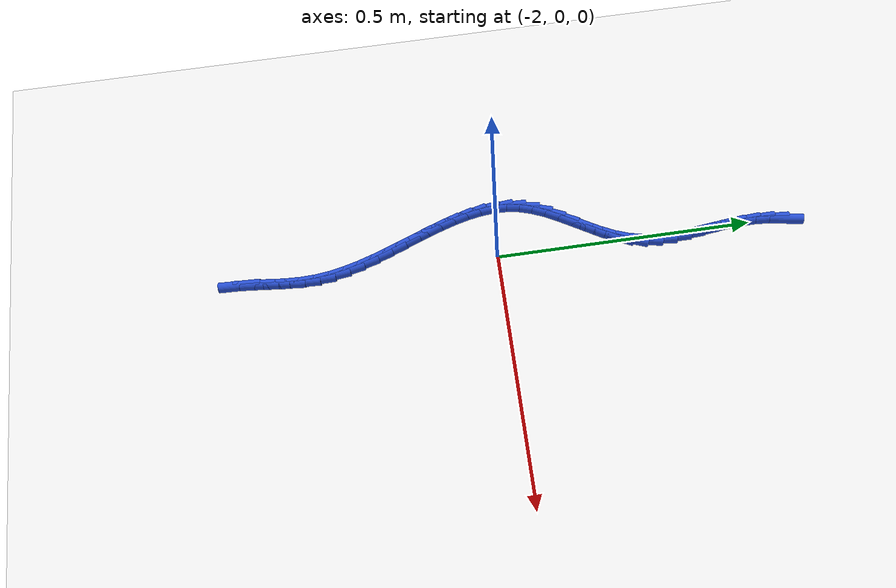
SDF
<sdf version="1.6">
 <world name="default">
  <model name="ground_plane">
   <static>1</static>
   <link name="link">
    <collision name="collision">
     <geometry><plane><normal>0 0 1</normal><size>100 100</size></plane></geometry>
     <surface><friction><ode><mu>100</mu><mu2>50</mu2></ode></friction></surface>
    </collision>
    <visual name="visual">
     <cast_shadows>0</cast_shadows>
     <geometry><plane><normal>0 0 1</normal><size>100 100</size></plane></geometry>
     <material>
      <script><uri>file://media/materials/scripts/gazebo.material</uri><name>Gazebo/WhiteGlow</name></script>
     </material>
    </visual>
   </link>
  </model>
  <model name="line">
   <link name="link_100">
    <pose>-1.99409339868117 0.5649897480696724 0.01 0 1.57 1.3979156998489404</pose>
    <collision name="collision">
     <geometry><cylinder><radius>0.01</radius><length>0.08</length></cylinder></geometry>
    </collision>
    <visual name="visual">
     <material>
      <script><name>Gazebo/Blue</name><uri>file://media/materials/scripts/gazebo.material</uri></script>
     </material>
     <geometry><cylinder><radius>0.01</radius><length>0.08</length></cylinder></geometry>
    </visual>
   </link>
   <link name="link_101">
    <pose>-1.9988839354130175 0.5375562791501692 0.01 0 1.57 1.504397867038779</pose>
    <collision name="collision">
     <geometry><cylinder><radius>0.01</radius><length>0.08</length></cylinder></geometry>
    </collision>
    <visual name="visual">
     <material>
      <script><name>Gazebo/Blue</name><uri>file://media/materials/scripts/gazebo.material</uri></script>
     </material>
     <geometry><cylinder><radius>0.01</radius><length>0.08</length></cylinder></geometry>
    </visual>
   </link>
   <link name="link_102">
    <pose>-2.0007379464836252 0.509674824533381 0.01 0 1.57 -1.5537678967196566</pose>
    <collision name="collision">
     <geometry><cylinder><radius>0.01</radius><length>0.08</length></cylinder></geometry>
    </collision>
    <visual name="visual">
     <material>
      <script><name>Gazebo/Blue</name><uri>file://media/materials/scripts/gazebo.material</uri></script>
     </material>
     <geometry><cylinder><radius>0.01</radius><length>0.08</length></cylinder></geometry>
    </visual>
   </link>
   <link name="link_103">
    <pose>-2.000257459874502 0.48146082216909364 0.01 0 1.57 -1.4968110829726127</pose>
    <collision name="collision">
     <geometry><cylinder><radius>0.01</radius><length>0.08</length></cylinder></geometry>
    </collision>
    <visual name="visual">
     <material>
      <script><name>Gazebo/Blue</name><uri>file://media/materials/scripts/gazebo.material</uri></script>
     </material>
     <geometry><cylinder><radius>0.01</radius><length>0.08</length></cylinder></geometry>
    </visual>
   </link>
   <link name="link_104">
    <pose>-1.9981501752706627 0.4530303118620421 0.01 0 1.57 -1.4651179189399914</pose>
    <collision name="collision">
     <geometry><cylinder><radius>0.01</radius><length>0.08</length></cylinder></geometry>
    </collision>
    <visual name="visual">
     <material>
      <script><name>Gazebo/Blue</name><uri>file://media/materials/scripts/gazebo.material</uri></script>
     </material>
     <geometry><cylinder><radius>0.01</radius><length>0.08</length></cylinder></geometry>
    </visual>
   </link>
   <link name="link_105">
    <pose>-1.9951237923571237 0.4244993334169622 0.01 0 1.57 -1.457735556239253</pose>
    <collision name="collision">
     <geometry><cylinder><radius>0.01</radius><length>0.08</length></cylinder></geometry>
    </collision>
    <visual name="visual">
     <material>
      <script><name>Gazebo/Blue</name><uri>file://media/materials/scripts/gazebo.material</uri></script>
     </material>
     <geometry><cylinder><radius>0.01</radius><length>0.08</length></cylinder></geometry>
    </visual>
   </link>
   <link name="link_106">
    <pose>-1.9918860108188998 0.3959839266385884 0.01 0 1.57 -1.4745088898477428</pose>
    <collision name="collision">
     <geometry><cylinder><radius>0.01</radius><length>0.08</length></cylinder></geometry>
    </collision>
    <visual name="visual">
     <material>
      <script><name>Gazebo/Blue</name><uri>file://media/materials/scripts/gazebo.material</uri></script>
     </material>
     <geometry><cylinder><radius>0.01</radius><length>0.08</length></cylinder></geometry>
    </visual>
   </link>
   <link name="link_107">
    <pose>-1.9891445303410071 0.3676001313316561 0.01 0 1.57 -1.5162063246088946</pose>
    <collision name="collision">
     <geometry><cylinder><radius>0.01</radius><length>0.08</length></cylinder></geometry>
    </collision>
    <visual name="visual">
     <material>
      <script><name>Gazebo/Blue</name><uri>file://media/materials/scripts/gazebo.material</uri></script>
     </material>
     <geometry><cylinder><radius>0.01</radius><length>0.08</length></cylinder></geometry>
    </visual>
   </link>
   <link name="link_108">
    <pose>-1.987607050608462 0.3394639873008998 0.01 0 1.57 1.5573226140925795</pose>
    <collision name="collision">
     <geometry><cylinder><radius>0.01</radius><length>0.08</length></cylinder></geometry>
    </collision>
    <visual name="visual">
     <material>
      <script><name>Gazebo/Blue</name><uri>file://media/materials/scripts/gazebo.material</uri></script>
     </material>
     <geometry><cylinder><radius>0.01</radius><length>0.08</length></cylinder></geometry>
    </visual>
   </link>
   <link name="link_109">
    <pose>-1.9879812713062792 0.31169153435105545 0.01 0 1.57 1.4615473715678684</pose>
    <collision name="collision">
     <geometry><cylinder><radius>0.01</radius><length>0.08</length></cylinder></geometry>
    </collision>
    <visual name="visual">
     <material>
      <script><name>Gazebo/Blue</name><uri>file://media/materials/scripts/gazebo.material</uri></script>
     </material>
     <geometry><cylinder><radius>0.01</radius><length>0.08</length></cylinder></geometry>
    </visual>
   </link>
   <link name="link_110">
    <pose>-1.990974892119475 0.28439881228685765 0.01 0 1.57 1.3384495718865532</pose>
    <collision name="collision">
     <geometry><cylinder><radius>0.01</radius><length>0.08</length></cylinder></geometry>
    </collision>
    <visual name="visual">
     <material>
      <script><name>Gazebo/Blue</name><uri>file://media/materials/scripts/gazebo.material</uri></script>
     </material>
     <geometry><cylinder><radius>0.01</radius><length>0.08</length></cylinder></geometry>
    </visual>
   </link>
   <link name="link_111">
    <pose>-1.997292050787566 0.2577013439700801 0.01 0 1.57 1.210121967337409</pose>
    <collision name="collision">
     <geometry><cylinder><radius>0.01</radius><length>0.08</length></cylinder></geometry>
    </collision>
    <visual name="visual">
     <material>
      <script><name>Gazebo/Blue</name><uri>file://media/materials/scripts/gazebo.material</uri></script>
     </material>
     <geometry><cylinder><radius>0.01</radius><length>0.08</length></cylinder></geometry>
    </visual>
   </link>
   <link name="link_112">
    <pose>-2.0071217271102215 0.2316398877072391 0.01 0 1.57 1.1161682340593102</pose>
    <collision name="collision">
     <geometry><cylinder><radius>0.01</radius><length>0.08</length></cylinder></geometry>
    </collision>
    <visual name="visual">
     <material>
      <script><name>Gazebo/Blue</name><uri>file://media/materials/scripts/gazebo.material</uri></script>
     </material>
     <geometry><cylinder><radius>0.01</radius><length>0.08</length></cylinder></geometry>
    </visual>
   </link>
   <link name="link_113">
    <pose>-2.019603584326097 0.2061029151371346 0.01 0 1.57 1.0583054257315547</pose>
    <collision name="collision">
     <geometry><cylinder><radius>0.01</radius><length>0.08</length></cylinder></geometry>
    </collision>
    <visual name="visual">
     <material>
      <script><name>Gazebo/Blue</name><uri>file://media/materials/scripts/gazebo.material</uri></script>
     </material>
     <geometry><cylinder><radius>0.01</radius><length>0.08</length></cylinder></geometry>
    </visual>
   </link>
   <link name="link_114">
    <pose>-2.033749623423887 0.18096037035467422 0.01 0 1.57 1.0334765235301189</pose>
    <collision name="collision">
     <geometry><cylinder><radius>0.01</radius><length>0.08</length></cylinder></geometry>
    </collision>
    <visual name="visual">
     <material>
      <script><name>Gazebo/Blue</name><uri>file://media/materials/scripts/gazebo.material</uri></script>
     </material>
     <geometry><cylinder><radius>0.01</radius><length>0.08</length></cylinder></geometry>
    </visual>
   </link>
   <link name="link_115">
    <pose>-2.0485718453922863 0.1560821974547654 0.01 0 1.57 1.0404185612540575</pose>
    <collision name="collision">
     <geometry><cylinder><radius>0.01</radius><length>0.08</length></cylinder></geometry>
    </collision>
    <visual name="visual">
     <material>
      <script><name>Gazebo/Blue</name><uri>file://media/materials/scripts/gazebo.material</uri></script>
     </material>
     <geometry><cylinder><radius>0.01</radius><length>0.08</length></cylinder></geometry>
    </visual>
   </link>
   <link name="link_116">
    <pose>-2.0630822512199884 0.13133834053231677 0.01 0 1.57 1.0803312485691863</pose>
    <collision name="collision">
     <geometry><cylinder><radius>0.01</radius><length>0.08</length></cylinder></geometry>
    </collision>
    <visual name="visual">
     <material>
      <script><name>Gazebo/Blue</name><uri>file://media/materials/scripts/gazebo.material</uri></script>
     </material>
     <geometry><cylinder><radius>0.01</radius><length>0.08</length></cylinder></geometry>
    </visual>
   </link>
   <link name="link_117">
    <pose>-2.0762928418956874 0.10659874368223587 0.01 0 1.57 1.1568959708487463</pose>
    <collision name="collision">
     <geometry><cylinder><radius>0.01</radius><length>0.08</length></cylinder></geometry>
    </collision>
    <visual name="visual">
     <material>
      <script><name>Gazebo/Blue</name><uri>file://media/materials/scripts/gazebo.material</uri></script>
     </material>
     <geometry><cylinder><radius>0.01</radius><length>0.08</length></cylinder></geometry>
    </visual>
   </link>
   <link name="link_118">
    <pose>-2.087215618408078 0.08173335099943056 0.01 0 1.57 1.2749835023264138</pose>
    <collision name="collision">
     <geometry><cylinder><radius>0.01</radius><length>0.08</length></cylinder></geometry>
    </collision>
    <visual name="visual">
     <material>
      <script><name>Gazebo/Blue</name><uri>file://media/materials/scripts/gazebo.material</uri></script>
     </material>
     <geometry><cylinder><radius>0.01</radius><length>0.08</length></cylinder></geometry>
    </visual>
   </link>
   <link name="link_119">
    <pose>-2.094871166147621 0.05661295944445857 0.01 0 1.57 1.4174488851874139</pose>
    <collision name="collision">
     <geometry><cylinder><radius>0.01</radius><length>0.08</length></cylinder></geometry>
    </collision>
    <visual name="visual">
     <material>
      <script><name>Gazebo/Blue</name><uri>file://media/materials/scripts/gazebo.material</uri></script>
     </material>
     <geometry><cylinder><radius>0.01</radius><length>0.08</length></cylinder></geometry>
    </visual>
   </link>
   <link name="link_120">
    <pose>-2.0988051157872 0.031160529552961024 0.01 0 1.57 1.5483954083392901</pose>
    <collision name="collision">
     <geometry><cylinder><radius>0.01</radius><length>0.08</length></cylinder></geometry>
    </collision>
    <visual name="visual">
     <material>
      <script><name>Gazebo/Blue</name><uri>file://media/materials/scripts/gazebo.material</uri></script>
     </material>
     <geometry><cylinder><radius>0.01</radius><length>0.08</length></cylinder></geometry>
    </visual>
   </link>
   <link name="link_121">
    <pose>-2.09938270984466 0.005380450806698918 0.01 0 1.57 -1.4812787891121912</pose>
    <collision name="collision">
     <geometry><cylinder><radius>0.01</radius><length>0.08</length></cylinder></geometry>
    </collision>
    <visual name="visual">
     <material>
      <script><name>Gazebo/Blue</name><uri>file://media/materials/scripts/gazebo.material</uri></script>
     </material>
     <geometry><cylinder><radius>0.01</radius><length>0.08</length></cylinder></geometry>
    </visual>
   </link>
   <link name="link_122">
    <pose>-2.0970403763662695 -0.020715814986081528 0.01 0 1.57 -1.3900024214564304</pose>
    <collision name="collision">
     <geometry><cylinder><radius>0.01</radius><length>0.08</length></cylinder></geometry>
    </collision>
    <visual name="visual">
     <material>
      <script><name>Gazebo/Blue</name><uri>file://media/materials/scripts/gazebo.material</uri></script>
     </material>
     <geometry><cylinder><radius>0.01</radius><length>0.08</length></cylinder></geometry>
    </visual>
   </link>
   <link name="link_123">
    <pose>-2.092214543398297 -0.047116806017134 0.01 0 1.57 -1.3188018198770897</pose>
    <collision name="collision">
     <geometry><cylinder><radius>0.01</radius><length>0.08</length></cylinder></geometry>
    </collision>
    <visual name="visual">
     <material>
      <script><name>Gazebo/Blue</name><uri>file://media/materials/scripts/gazebo.material</uri></script>
     </material>
     <geometry><cylinder><radius>0.01</radius><length>0.08</length></cylinder></geometry>
    </visual>
   </link>
   <link name="link_124">
    <pose>-2.085341638987012 -0.07381106047821226 0.01 0 1.57 -1.2661046630482884</pose>
    <collision name="collision">
     <geometry><cylinder><radius>0.01</radius><length>0.08</length></cylinder></geometry>
    </collision>
    <visual name="visual">
     <material>
      <script><name>Gazebo/Blue</name><uri>file://media/materials/scripts/gazebo.material</uri></script>
     </material>
     <geometry><cylinder><radius>0.01</radius><length>0.08</length></cylinder></geometry>
    </visual>
   </link>
   <link name="link_125">
    <pose>-2.076858091178682 -0.10078711656107073 0.01 0 1.57 -1.2301535871689342</pose>
    <collision name="collision">
     <geometry><cylinder><radius>0.01</radius><length>0.08</length></cylinder></geometry>
    </collision>
    <visual name="visual">
     <material>
      <script><name>Gazebo/Blue</name><uri>file://media/materials/scripts/gazebo.material</uri></script>
     </material>
     <geometry><cylinder><radius>0.01</radius><length>0.08</length></cylinder></geometry>
    </visual>
   </link>
   <link name="link_126">
    <pose>-2.0672003280195774 -0.12803351245746172 0.01 0 1.57 -1.209444023952832</pose>
    <collision name="collision">
     <geometry><cylinder><radius>0.01</radius><length>0.08</length></cylinder></geometry>
    </collision>
    <visual name="visual">
     <material>
      <script><name>Gazebo/Blue</name><uri>file://media/materials/scripts/gazebo.material</uri></script>
     </material>
     <geometry><cylinder><radius>0.01</radius><length>0.08</length></cylinder></geometry>
    </visual>
   </link>
   <link name="link_127">
    <pose>-2.0568047775559655 -0.1555387863591397 0.01 0 1.57 -1.2029070750526587</pose>
    <collision name="collision">
     <geometry><cylinder><radius>0.01</radius><length>0.08</length></cylinder></geometry>
    </collision>
    <visual name="visual">
     <material>
      <script><name>Gazebo/Blue</name><uri>file://media/materials/scripts/gazebo.material</uri></script>
     </material>
     <geometry><cylinder><radius>0.01</radius><length>0.08</length></cylinder></geometry>
    </visual>
   </link>
   <link name="link_128">
    <pose>-2.0461078678341145 -0.18329147645785834 0.01 0 1.57 -1.2099567822572574</pose>
    <collision name="collision">
     <geometry><cylinder><radius>0.01</radius><length>0.08</length></cylinder></geometry>
    </collision>
    <visual name="visual">
     <material>
      <script><name>Gazebo/Blue</name><uri>file://media/materials/scripts/gazebo.material</uri></script>
     </material>
     <geometry><cylinder><radius>0.01</radius><length>0.08</length></cylinder></geometry>
    </visual>
   </link>
   <link name="link_129">
    <pose>-2.0355460269002945 -0.21128012094537144 0.01 0 1.57 -1.2304713498301483</pose>
    <collision name="collision">
     <geometry><cylinder><radius>0.01</radius><length>0.08</length></cylinder></geometry>
    </collision>
    <visual name="visual">
     <material>
      <script><name>Gazebo/Blue</name><uri>file://media/materials/scripts/gazebo.material</uri></script>
     </material>
     <geometry><cylinder><radius>0.01</radius><length>0.08</length></cylinder></geometry>
    </visual>
   </link>
   <link name="link_130">
    <pose>-2.0255556828007726 -0.23949325801343269 0.01 0 1.57 -1.2647340216553027</pose>
    <collision name="collision">
     <geometry><cylinder><radius>0.01</radius><length>0.08</length></cylinder></geometry>
    </collision>
    <visual name="visual">
     <material>
      <script><name>Gazebo/Blue</name><uri>file://media/materials/scripts/gazebo.material</uri></script>
     </material>
     <geometry><cylinder><radius>0.01</radius><length>0.08</length></cylinder></geometry>
    </visual>
   </link>
   <link name="link_131">
    <pose>-2.0165732635818188 -0.2679194258537958 0.01 0 1.57 -1.3133271974369196</pose>
    <collision name="collision">
     <geometry><cylinder><radius>0.01</radius><length>0.08</length></cylinder></geometry>
    </collision>
    <visual name="visual">
     <material>
      <script><name>Gazebo/Blue</name><uri>file://media/materials/scripts/gazebo.material</uri></script>
     </material>
     <geometry><cylinder><radius>0.01</radius><length>0.08</length></cylinder></geometry>
    </visual>
   </link>
   <link name="link_132">
    <pose>-2.0090351972897005 -0.2965471626582153 0.01 0 1.57 -1.3769495317986191</pose>
    <collision name="collision">
     <geometry><cylinder><radius>0.01</radius><length>0.08</length></cylinder></geometry>
    </collision>
    <visual name="visual">
     <material>
      <script><name>Gazebo/Blue</name><uri>file://media/materials/scripts/gazebo.material</uri></script>
     </material>
     <geometry><cylinder><radius>0.01</radius><length>0.08</length></cylinder></geometry>
    </visual>
   </link>
   <link name="link_133">
    <pose>-2.003377911970688 -0.3253650066184434 0.01 0 1.57 -1.4561127813879962</pose>
    <collision name="collision">
     <geometry><cylinder><radius>0.01</radius><length>0.08</length></cylinder></geometry>
    </collision>
    <visual name="visual">
     <material>
      <script><name>Gazebo/Blue</name><uri>file://media/materials/scripts/gazebo.material</uri></script>
     </material>
     <geometry><cylinder><radius>0.01</radius><length>0.08</length></cylinder></geometry>
    </visual>
   </link>
   <link name="link_134">
    <pose>-2.0000378356710478 -0.3543614959262345 0.01 0 1.57 -1.545929331137811</pose>
    <collision name="collision">
     <geometry><cylinder><radius>0.01</radius><length>0.08</length></cylinder></geometry>
    </collision>
    <visual name="visual">
     <material>
      <script><name>Gazebo/Blue</name><uri>file://media/materials/scripts/gazebo.material</uri></script>
     </material>
     <geometry><cylinder><radius>0.01</radius><length>0.08</length></cylinder></geometry>
    </visual>
   </link>
   <link name="link_135">
    <pose>-1.999312893027992 -0.3835082903322336 0.01 0 1.57 1.5246035544220462</pose>
    <collision name="collision">
     <geometry><cylinder><radius>0.01</radius><length>0.08</length></cylinder></geometry>
    </collision>
    <visual name="visual">
     <material>
      <script><name>Gazebo/Blue</name><uri>file://media/materials/scripts/gazebo.material</uri></script>
     </material>
     <geometry><cylinder><radius>0.01</radius><length>0.08</length></cylinder></geometry>
    </visual>
   </link>
   <link name="link_136">
    <pose>-2.0006611294015073 -0.4126746993776888 0.01 0 1.57 1.4826441446247098</pose>
    <collision name="collision">
     <geometry><cylinder><radius>0.01</radius><length>0.08</length></cylinder></geometry>
    </collision>
    <visual name="visual">
     <material>
      <script><name>Gazebo/Blue</name><uri>file://media/materials/scripts/gazebo.material</uri></script>
     </material>
     <geometry><cylinder><radius>0.01</radius><length>0.08</length></cylinder></geometry>
    </visual>
   </link>
   <link name="link_137">
    <pose>-2.003225683881864 -0.44169165718071357 0.01 0 1.57 1.469278206354179</pose>
    <collision name="collision">
     <geometry><cylinder><radius>0.01</radius><length>0.08</length></cylinder></geometry>
    </collision>
    <visual name="visual">
     <material>
      <script><name>Gazebo/Blue</name><uri>file://media/materials/scripts/gazebo.material</uri></script>
     </material>
     <geometry><cylinder><radius>0.01</radius><length>0.08</length></cylinder></geometry>
    </visual>
   </link>
   <link name="link_138">
    <pose>-2.0061491386282397 -0.4703900299901266 0.01 0 1.57 1.4850488983331869</pose>
    <collision name="collision">
     <geometry><cylinder><radius>0.01</radius><length>0.08</length></cylinder></geometry>
    </collision>
    <visual name="visual">
     <material>
      <script><name>Gazebo/Blue</name><uri>file://media/materials/scripts/gazebo.material</uri></script>
     </material>
     <geometry><cylinder><radius>0.01</radius><length>0.08</length></cylinder></geometry>
    </visual>
   </link>
   <link name="link_139">
    <pose>-2.0085740757998107 -0.49860068405474667 0.01 0 1.57 1.532018886815739</pose>
    <collision name="collision">
     <geometry><cylinder><radius>0.01</radius><length>0.08</length></cylinder></geometry>
    </collision>
    <visual name="visual">
     <material>
      <script><name>Gazebo/Blue</name><uri>file://media/materials/scripts/gazebo.material</uri></script>
     </material>
     <geometry><cylinder><radius>0.01</radius><length>0.08</length></cylinder></geometry>
    </visual>
   </link>
  </model>
 </world>
</sdf>
